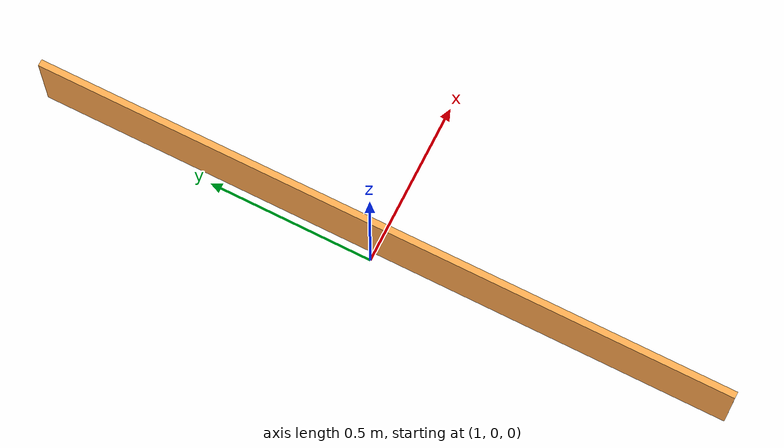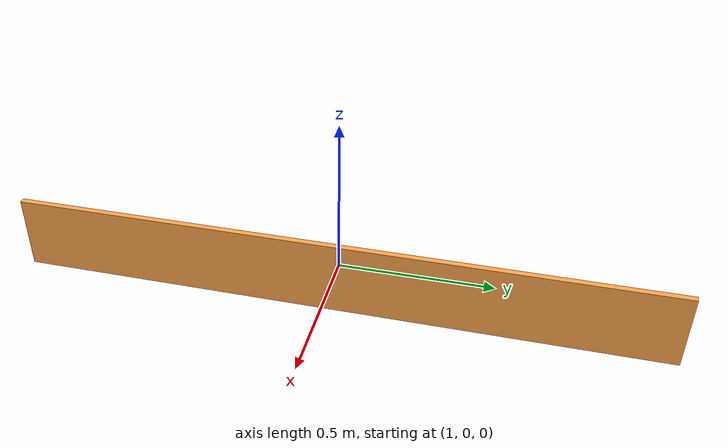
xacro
<?xml version="1.0"?>
<robot name="testbed" xmlns:xacro="http://www.ros.org/wiki/xacro">

  <!-- Colors used for testbed walls. -->
  <material name="Green">
    <color rgba="0.0 1.0 0.0 1.0"/>
  </material>

  <material name="Cyan">
    <color rgba="0.0 1.0 1.0 1.0"/>
  </material>

  <material name="Orange">
    <color rgba="1.0 0.65 0.3 1.0"/>
  </material>

  <material name="Purple">
    <color rgba="0.55 0 0.55 1.0"/>
  </material>

  <!-- Universal Values -->
  <xacro:property name="PI" value="3.14159265358979"/>

  <!-- Property List -->
  <xacro:property name="side_1_length" value="2.135"/>
  <xacro:property name="side_1_width" value="0.02"/>
  <xacro:property name="side_1_height" value="0.245"/>
  <xacro:property name="side_1_mass" value="1.0"/>
  <xacro:property name="side_1_x" value="${2.135 / 2}"/>
  <xacro:property name="side_1_y" value="0.0"/>
  <xacro:property name="side_1_z" value="0.0"/>
  <xacro:property name="side_1_roll" value="0.0"/>
  <xacro:property name="side_1_pitch" value="0.0"/>
  <xacro:property name="side_1_yaw" value="0.0"/>

  <!-- ############################## LINK ############################## -->

  <link name="side_1_link">
    <visual>
      <material name="Orange"/>
      <origin xyz="${side_1_x} ${side_1_y} ${side_1_z}" rpy="${side_1_roll} ${side_1_pitch} ${side_1_yaw}"/>
      <geometry>
        <box size="${side_1_width} ${side_1_length} ${side_1_height}"/>
      </geometry>
    </visual>
    <inertial>
      <mass value="${side_1_mass}"/>
      <origin xyz="${side_1_x} ${side_1_y} ${side_1_z}" rpy="${side_1_roll} ${side_1_pitch} ${side_1_yaw}"/>
      <inertia ixx="1.0" ixy="0.0" ixz="0.0" iyy="1.0" iyz="0.0" izz="1.0"/>
    </inertial>
    <collision>
      <origin xyz="${side_1_x} ${side_1_y} ${side_1_z}" rpy="${side_1_roll} ${side_1_pitch} ${side_1_yaw}"/>
      <geometry>
        <box size="${side_1_length} ${side_1_width} ${side_1_height}"/>
      </geometry>
    </collision>
  </link>

  <gazebo reference="side_1_link">
    <material>Gazebo/Orange</material>
    <turnGravityOff>false</turnGravityOff>
  </gazebo>

</robot>
